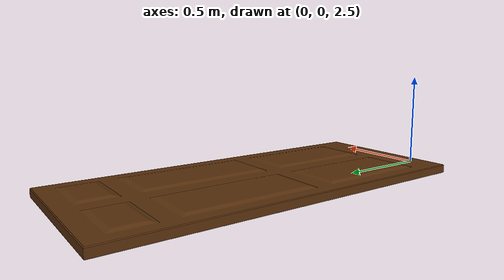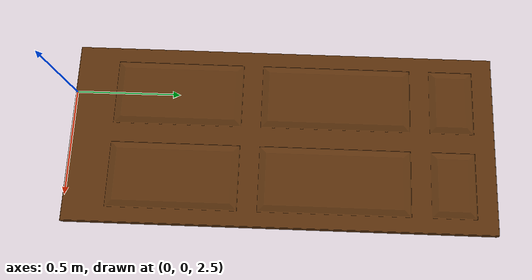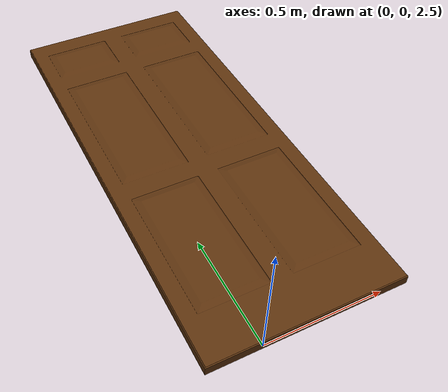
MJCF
<mujoco model="Door_96dbc7e4">
  <compiler autolimits="true" boundmass="0.01" angle="radian"/>
  <default>
    <default class="/">
      <default class="__VISUAL_MJT__">
        <geom contype="0" conaffinity="0" group="0" mass="1e-08"/>
      </default>
      <default class="__STRUCTURAL_MJT__">
        <geom contype="8" conaffinity="15" group="4" friction="0.90000000000000002 0.90000000000000002 0.001" density="500" solref="0.025000000000000001 1" solimp="0.998 0.998 0.001"/>
      </default>
      <default class="__DYNAMIC_MJT__">
        <geom contype="1" conaffinity="15" group="4" friction="0.90000000000000002 0.90000000000000002 0.001" density="500" solref="0.025000000000000001 1" solimp="0.998 0.998 0.001"/>
      </default>
      <default class="__ARTICULABLE_DYNAMIC_MJT__">
        <geom contype="0" conaffinity="7" group="4" friction="0.90000000000000002 0.90000000000000002 0.001" density="500" solref="0.025000000000000001 1" solimp="0.998 0.998 0.001"/>
      </default>
    </default>
  </default>
  <asset>
    <texture name="WornWood" type="2d" file="TexturesCom_WornWood2_albedo_S.png"/>
    <material name="material_WornWood" class="/" texture="WornWood" specular="0.5" shininess="0.5" rgba="0.51470590000000005 0.39119739999999997 0.17030709999999999 1"/>
    <mesh name="Door_96dbc7e4_Door_96dbc7e4" class="/" file="Door_96dbc7e4_Door_96dbc7e4/Door_96dbc7e4_Door_96dbc7e4.obj" scale="1 1 1" inertia="legacy"/>
  </asset>
  <worldbody>
    <body name="Door_96dbc7e4">
      <body name="Door_96dbc7e4_Door_96dbc7e4" pos="-0 0 0" quat="1 0 0 0">
        <geom name="Door_96dbc7e4_Door_96dbc7e4" class="__VISUAL_MJT__" type="mesh" material="material_WornWood" mesh="Door_96dbc7e4_Door_96dbc7e4"/>
        <geom name="Door_96dbc7e4_Door_96dbc7e4_PrimitiveCollider_0" class="__DYNAMIC_MJT__" type="box" size="0.42499998211860657 1 0.0279999990016222" rgba="0 1 0 1" pos="0.19999998807907104 1 2.5" quat="0 1 0 0"/>
        <geom name="Door_96dbc7e4_Door_96dbc7e4_PrimitiveCollider_1" class="__DYNAMIC_MJT__" type="box" size="0.42974492907524109 1.0030472278594971 0.027886640280485153" rgba="0 1 0 1" pos="0.19999998807907104 0.99930685758590698 2.5" quat="0 1 0 0"/>
      </body>
    </body>
  </worldbody>
</mujoco>
